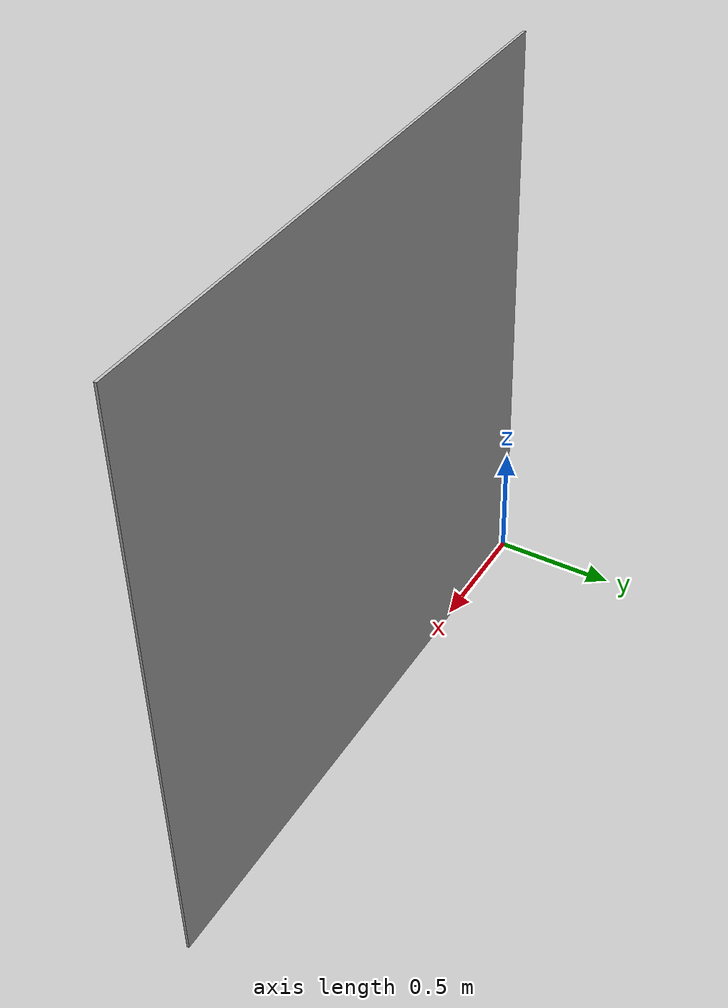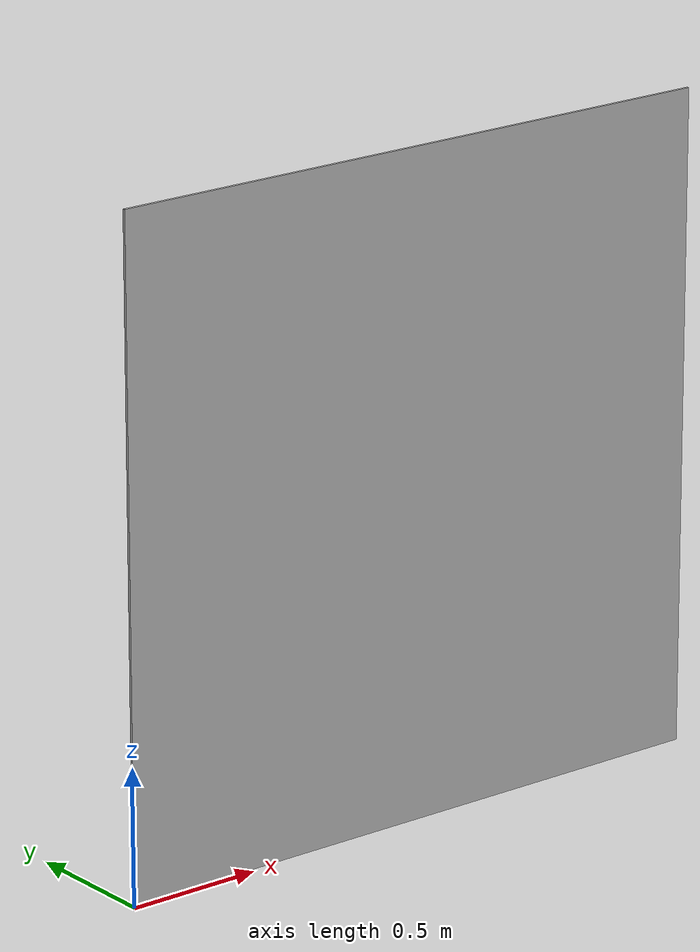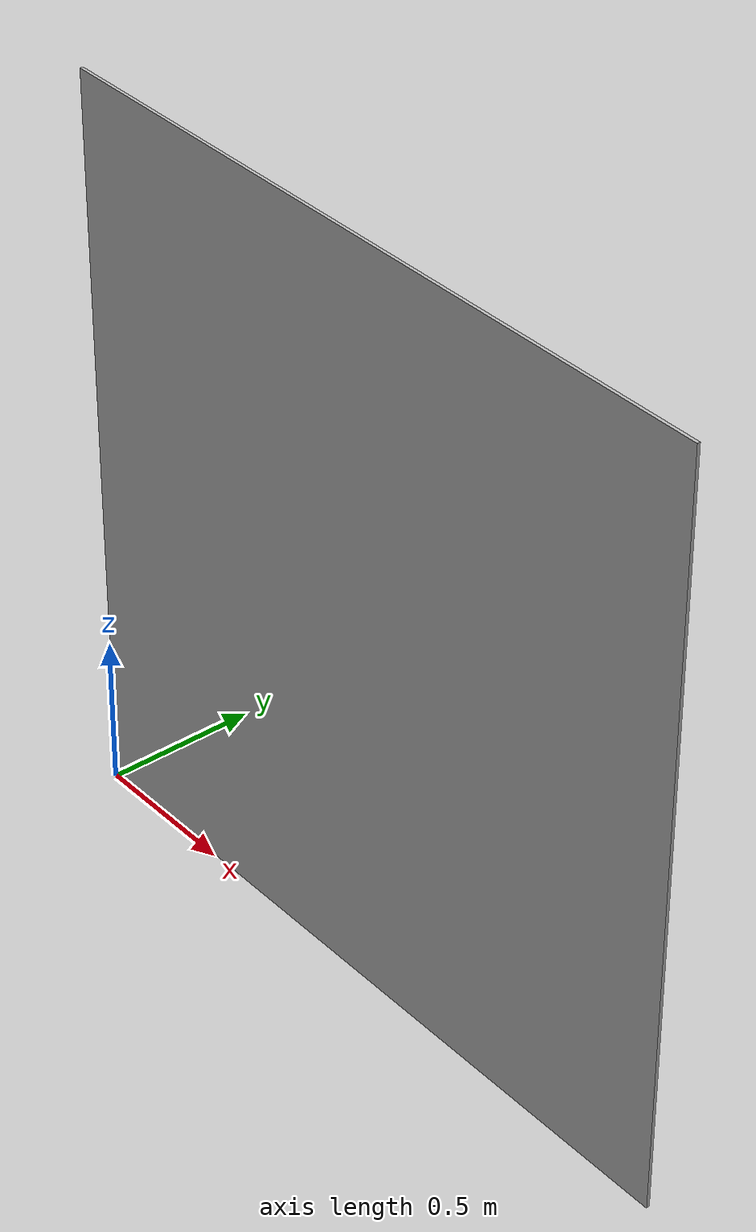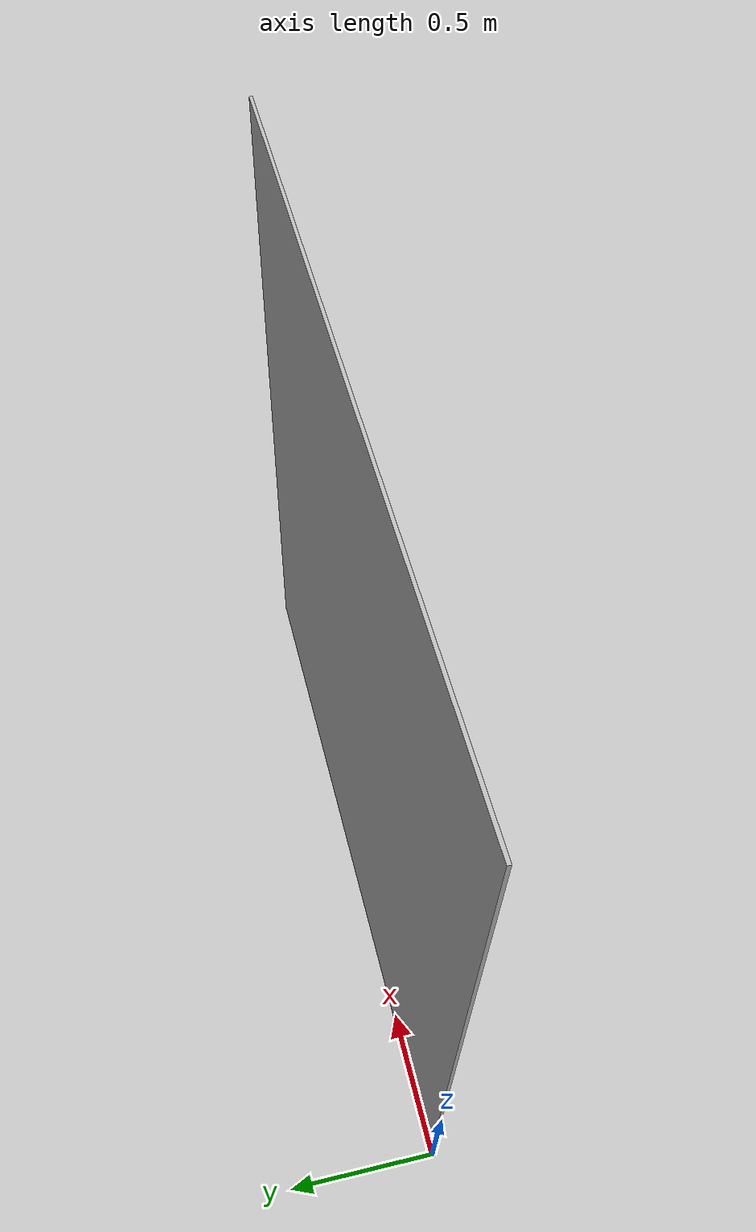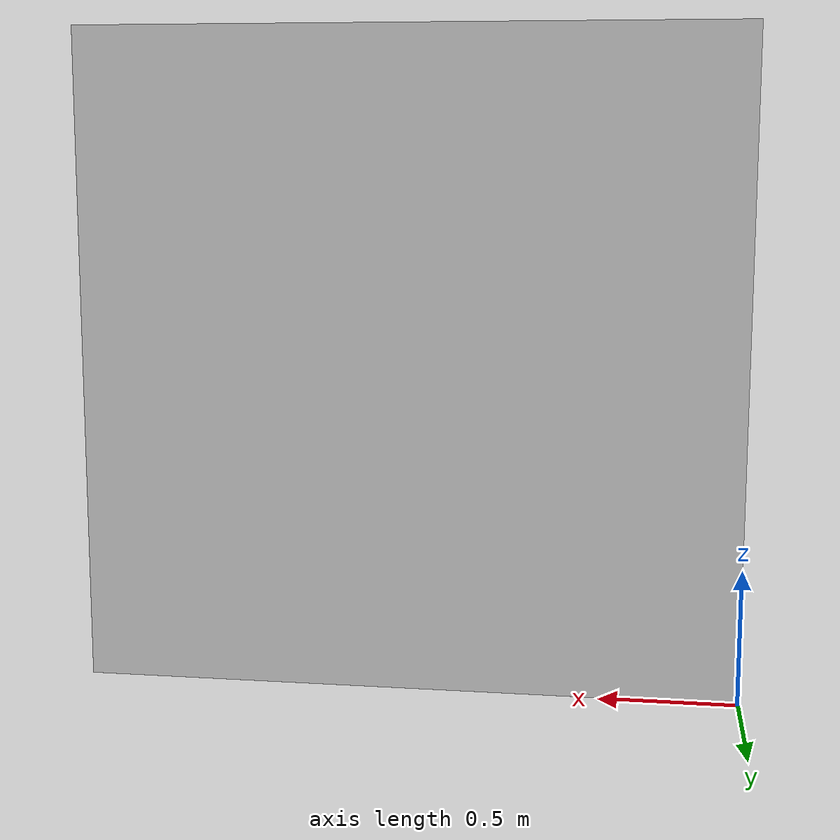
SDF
<?xml version="1.0" ?>
<sdf version="1.5">
  <model name="NistWallDouble">
        <static>true</static>
    <link name="link">
    <gravity>0</gravity>
      <collision name="collision">
        <geometry>
          <mesh>
            <scale>1 1 1</scale>
            <uri>model://nist_wall_double/meshes/nistwalldouble.dae</uri>
          </mesh>
        </geometry>
      </collision>
      <visual name="visual">
        <geometry>
          <mesh>
            <scale>1 1 1</scale>
            <uri>model://nist_wall_double/meshes/nistwalldouble.dae</uri>
          </mesh>
        </geometry>
      </visual>
    </link>
  </model>
</sdf>
